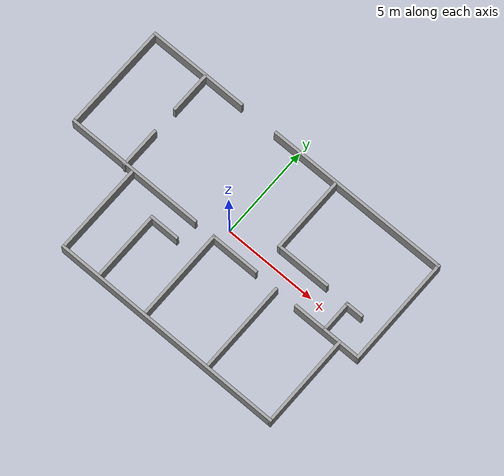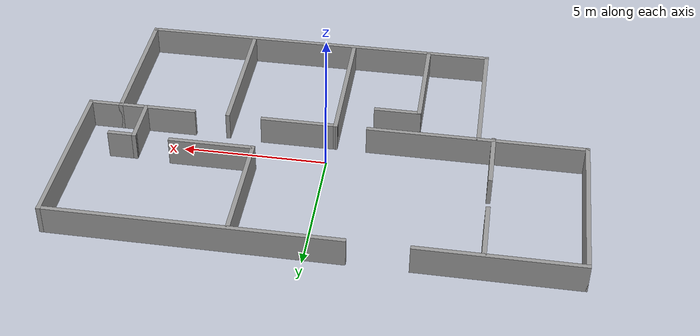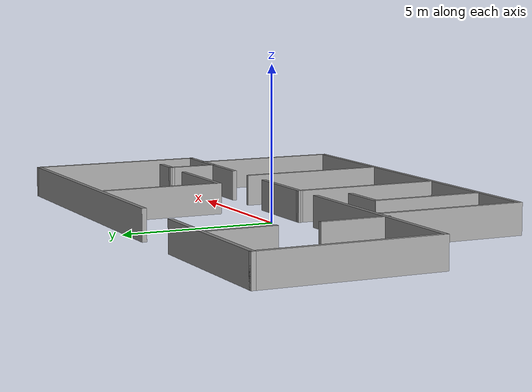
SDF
<?xml version='1.0'?>
<sdf version='1.6'>
  <model name='home'>
    <pose frame=''>-0.127498 -0.471945 0 0 -0 0</pose>
    <link name='Wall_0'>
      <collision name='Wall_0_Collision'>
        <geometry>
          <box>
            <size>5.85 0.15 1.01</size>
          </box>
        </geometry>
        <pose frame=''>0 0 0.505 0 -0 0</pose>
      </collision>
      <visual name='Wall_0_Visual'>
        <pose frame=''>0 0 0.505 0 -0 0</pose>
        <geometry>
          <box>
            <size>5.85 0.15 1.01</size>
          </box>
        </geometry>
        <material>
          <script>
            <uri>file://media/materials/scripts/gazebo.material</uri>
            <name>Gazebo/Grey</name>
          </script>
          <ambient>1 1 1 1</ambient>
        </material>
      </visual>
      <pose frame=''>-8.6775 2.44195 0 0 0 -1.5708</pose>
    </link>
    <link name='Wall_10'>
      <collision name='Wall_10_Collision'>
        <geometry>
          <box>
            <size>3.75 0.15 1.01</size>
          </box>
        </geometry>
        <pose frame=''>0 0 0.505 0 -0 0</pose>
      </collision>
      <visual name='Wall_10_Visual'>
        <pose frame=''>0 0 0.505 0 -0 0</pose>
        <geometry>
          <box>
            <size>3.75 0.15 1.01</size>
          </box>
        </geometry>
        <material>
          <script>
            <uri>file://media/materials/scripts/gazebo.material</uri>
            <name>Gazebo/Grey</name>
          </script>
          <ambient>1 1 1 1</ambient>
        </material>
      </visual>
      <pose frame=''>-2.85846 -3.39925 0 0 -0 1.5708</pose>
    </link>
    <link name='Wall_11'>
      <collision name='Wall_11_Collision'>
        <geometry>
          <box>
            <size>1.65 0.15 1.01</size>
          </box>
        </geometry>
        <pose frame=''>0 0 0.505 0 -0 0</pose>
      </collision>
      <visual name='Wall_11_Visual'>
        <pose frame=''>0 0 0.505 0 -0 0</pose>
        <geometry>
          <box>
            <size>1.65 0.15 1.01</size>
          </box>
        </geometry>
        <material>
          <script>
            <uri>file://media/materials/scripts/gazebo.material</uri>
            <name>Gazebo/Grey</name>
          </script>
          <ambient>1 1 1 1</ambient>
        </material>
      </visual>
      <pose frame=''>-2.10 -1.57 0 0 -0 0</pose>
    </link>
    <link name='Wall_12'>
      <collision name='Wall_12_Collision'>
        <geometry>
          <box>
            <size>4.88874 0.15 1.01</size>
          </box>
        </geometry>
        <pose frame=''>0 0 0.505 0 -0 0</pose>
      </collision>
      <visual name='Wall_12_Visual'>
        <pose frame=''>0 0 0.505 0 -0 0</pose>
        <geometry>
          <box>
            <size>4.88874 0.15 1.01</size>
          </box>
        </geometry>
        <material>
          <script>
            <uri>file://media/materials/scripts/gazebo.material</uri>
            <name>Gazebo/Grey</name>
          </script>
          <ambient>1 1 1 1</ambient>
        </material>
      </visual>
      <pose frame=''>-0.066276 -2.77742 0 0 -0 1.57342</pose>
    </link>
    <link name='Wall_16'>
      <collision name='Wall_16_Collision'>
        <geometry>
          <box>
            <size>4.9 0.15 1.01</size>
          </box>
        </geometry>
        <pose frame=''>0 0 0.505 0 -0 0</pose>
      </collision>
      <visual name='Wall_16_Visual'>
        <pose frame=''>0 0 0.505 0 -0 0</pose>
        <geometry>
          <box>
            <size>4.9 0.15 1.01</size>
          </box>
        </geometry>
        <material>
          <script>
            <uri>file://media/materials/scripts/gazebo.material</uri>
            <name>Gazebo/Grey</name>
          </script>
          <ambient>1 1 1 1</ambient>
        </material>
      </visual>
      <pose frame=''>3.73529 -2.82425 0 0 -0 1.5708</pose>
    </link>
    <link name='Wall_18'>
      <collision name='Wall_18_Collision'>
        <geometry>
          <box>
            <size>3.85 0.15 1.01</size>
          </box>
        </geometry>
        <pose frame=''>0 0 0.505 0 -0 0</pose>
      </collision>
      <visual name='Wall_18_Visual'>
        <pose frame=''>0 0 0.505 0 -0 0</pose>
        <geometry>
          <box>
            <size>3.85 0.15 1.01</size>
          </box>
        </geometry>
        <material>
          <script>
            <uri>file://media/materials/scripts/gazebo.material</uri>
            <name>Gazebo/Grey</name>
          </script>
          <ambient>1 1 1 1</ambient>
        </material>
      </visual>
      <pose frame=''>6.82709 -0.44195 0 0 -0 0</pose>
    </link>
    <link name='Wall_2'>
      <collision name='Wall_2_Collision'>
        <geometry>
          <box>
            <size>7.6 0.15 1.01</size>
          </box>
        </geometry>
        <pose frame=''>0 0 0.505 0 -0 0</pose>
      </collision>
      <visual name='Wall_2_Visual'>
        <pose frame=''>0 0 0.505 0 -0 0</pose>
        <geometry>
          <box>
            <size>7.6 0.15 1.01</size>
          </box>
        </geometry>
        <material>
          <script>
            <uri>file://media/materials/scripts/gazebo.material</uri>
            <name>Gazebo/Grey</name>
          </script>
          <ambient>1 1 1 1</ambient>
        </material>
      </visual>
      <pose frame=''>-4.9525 -0.408055 0 0 -0 0</pose>
    </link>
    <link name='Wall_20'>
      <collision name='Wall_20_Collision'>
        <geometry>
          <box>
            <size>5.8839 0.15 1.01</size>
          </box>
        </geometry>
        <pose frame=''>0 0 0.505 0 -0 0</pose>
      </collision>
      <visual name='Wall_20_Visual'>
        <pose frame=''>0 0 0.505 0 -0 0</pose>
        <geometry>
          <box>
            <size>5.8839 0.15 1.01</size>
          </box>
        </geometry>
        <material>
          <script>
            <uri>file://media/materials/scripts/gazebo.material</uri>
            <name>Gazebo/Grey</name>
          </script>
          <ambient>1 1 1 1</ambient>
        </material>
      </visual>
      <pose frame=''>8.67729 2.425 0 0 -0 1.57072</pose>
    </link>
    <link name='Wall_22'>
      <collision name='Wall_22_Collision'>
        <geometry>
          <box>
            <size>10 0.15 1.01</size>
          </box>
        </geometry>
        <pose frame=''>0 0 0.505 0 -0 0</pose>
      </collision>
      <visual name='Wall_22_Visual'>
        <pose frame=''>0 0 0.505 0 -0 0</pose>
        <geometry>
          <box>
            <size>10 0.15 1.01</size>
          </box>
        </geometry>
        <material>
          <script>
            <uri>file://media/materials/scripts/gazebo.material</uri>
            <name>Gazebo/Grey</name>
          </script>
          <ambient>1 1 1 1</ambient>
        </material>
      </visual>
      <pose frame=''>3.7525 5.29195 0 0 -0 3.14159</pose>
    </link>
    <link name='Wall_24'>
      <collision name='Wall_24_Collision'>
        <geometry>
          <box>
            <size>5.5 0.15 1.01</size>
          </box>
        </geometry>
        <pose frame=''>0 0 0.505 0 -0 0</pose>
      </collision>
      <visual name='Wall_24_Visual'>
        <pose frame=''>0 0 0.505 0 -0 0</pose>
        <geometry>
          <box>
            <size>5.5 0.15 1.01</size>
          </box>
        </geometry>
        <material>
          <script>
            <uri>file://media/materials/scripts/gazebo.material</uri>
            <name>Gazebo/Grey</name>
          </script>
          <ambient>1 1 1 1</ambient>
        </material>
      </visual>
      <pose frame=''>-6.0025 5.29195 0 0 -0 0</pose>
    </link>
    <link name='Wall_26'>
      <collision name='Wall_26_Collision'>
        <geometry>
          <box>
            <size>1.75 0.15 1.01</size>
          </box>
        </geometry>
        <pose frame=''>0 0 0.505 0 -0 0</pose>
      </collision>
      <visual name='Wall_26_Visual'>
        <pose frame=''>0 0 0.505 0 -0 0</pose>
        <geometry>
          <box>
            <size>1.75 0.15 1.01</size>
          </box>
        </geometry>
        <material>
          <script>
            <uri>file://media/materials/scripts/gazebo.material</uri>
            <name>Gazebo/Grey</name>
          </script>
          <ambient>1 1 1 1</ambient>
        </material>
      </visual>
      <pose frame=''>6.67166 0.362175 0 0 0 -1.5706</pose>
    </link>
    <link name='Wall_28'>
      <collision name='Wall_28_Collision'>
        <geometry>
          <box>
            <size>1 0.15 1.01</size>
          </box>
        </geometry>
        <pose frame=''>0 0 0.505 0 -0 0</pose>
      </collision>
      <visual name='Wall_28_Visual'>
        <pose frame=''>0 0 0.505 0 -0 0</pose>
        <geometry>
          <box>
            <size>1 0.15 1.01</size>
          </box>
        </geometry>
        <material>
          <script>
            <uri>file://media/materials/scripts/gazebo.material</uri>
            <name>Gazebo/Grey</name>
          </script>
          <ambient>1 1 1 1</ambient>
        </material>
      </visual>
      <pose frame=''>7.0965 1.16195 0 0 -0 0</pose>
    </link>
    <link name='Wall_30'>
      <collision name='Wall_30_Collision'>
        <geometry>
          <box>
            <size>4.1 0.15 1.01</size>
          </box>
        </geometry>
        <pose frame=''>0 0 0.505 0 -0 0</pose>
      </collision>
      <visual name='Wall_30_Visual'>
        <pose frame=''>0 0 0.505 0 -0 0</pose>
        <geometry>
          <box>
            <size>4.1 0.15 1.01</size>
          </box>
        </geometry>
        <material>
          <script>
            <uri>file://media/materials/scripts/gazebo.material</uri>
            <name>Gazebo/Grey</name>
          </script>
          <ambient>1 1 1 1</ambient>
        </material>
      </visual>
      <pose frame=''>2.52218 3.20403 0 0 0 -1.5708</pose>
    </link>
    <link name='Wall_32'>
      <collision name='Wall_32_Collision'>
        <geometry>
          <box>
            <size>3 0.15 1.01</size>
          </box>
        </geometry>
        <pose frame=''>0 0 0.505 0 -0 0</pose>
      </collision>
      <visual name='Wall_32_Visual'>
        <pose frame=''>0 0 0.505 0 -0 0</pose>
        <geometry>
          <box>
            <size>3 0.15 1.01</size>
          </box>
        </geometry>
        <material>
          <script>
            <uri>file://media/materials/scripts/gazebo.material</uri>
            <name>Gazebo/Grey</name>
          </script>
          <ambient>1 1 1 1</ambient>
        </material>
      </visual>
      <pose frame=''>3.94719 1.22903 0 0 -0 0</pose>
    </link>
    <link name='Wall_34'>
      <collision name='Wall_34_Collision'>
        <geometry>
          <box>
            <size>2.25 0.15 1.01</size>
          </box>
        </geometry>
        <pose frame=''>0 0 0.505 0 -0 0</pose>
      </collision>
      <visual name='Wall_34_Visual'>
        <pose frame=''>0 0 0.505 0 -0 0</pose>
        <geometry>
          <box>
            <size>2.25 0.15 1.01</size>
          </box>
        </geometry>
        <material>
          <script>
            <uri>file://media/materials/scripts/gazebo.material</uri>
            <name>Gazebo/Grey</name>
          </script>
          <ambient>1 1 1 1</ambient>
        </material>
      </visual>
      <pose frame=''>-5.5115 4.15595 0 0 0 -1.5708</pose>
    </link>
    <link name='Wall_36'>
      <collision name='Wall_36_Collision'>
        <geometry>
          <box>
            <size>2.25 0.15 1.01</size>
          </box>
        </geometry>
        <pose frame=''>0 0 0.505 0 -0 0</pose>
      </collision>
      <visual name='Wall_36_Visual'>
        <pose frame=''>0 0 0.505 0 -0 0</pose>
        <geometry>
          <box>
            <size>2.25 0.15 1.01</size>
          </box>
        </geometry>
        <material>
          <script>
            <uri>file://media/materials/scripts/gazebo.material</uri>
            <name>Gazebo/Grey</name>
          </script>
          <ambient>1 1 1 1</ambient>
        </material>
      </visual>
      <pose frame=''>-5.51107 0.589792 0 0 -0 1.5708</pose>
    </link>
    <link name='Wall_4'>
      <collision name='Wall_4_Collision'>
        <geometry>
          <box>
            <size>2.7 0.15 1.01</size>
          </box>
        </geometry>
        <pose frame=''>0 0 0.505 0 -0 0</pose>
      </collision>
      <visual name='Wall_4_Visual'>
        <pose frame=''>0 0 0.505 0 -0 0</pose>
        <geometry>
          <box>
            <size>2.7 0.15 1.01</size>
          </box>
        </geometry>
        <material>
          <script>
            <uri>file://media/materials/scripts/gazebo.material</uri>
            <name>Gazebo/Grey</name>
          </script>
          <ambient>1 1 1 1</ambient>
        </material>
      </visual>
      <pose frame=''>1.2025 -0.408055 0 0 -0 0</pose>
    </link>
    <link name='Wall_6'>
      <collision name='Wall_6_Collision'>
        <geometry>
          <box>
            <size>5 0.15 1.01</size>
          </box>
        </geometry>
        <pose frame=''>0 0 0.505 0 -0 0</pose>
      </collision>
      <visual name='Wall_6_Visual'>
        <pose frame=''>0 0 0.505 0 -0 0</pose>
        <geometry>
          <box>
            <size>5 0.15 1.01</size>
          </box>
        </geometry>
        <material>
          <script>
            <uri>file://media/materials/scripts/gazebo.material</uri>
            <name>Gazebo/Grey</name>
          </script>
          <ambient>1 1 1 1</ambient>
        </material>
      </visual>
      <pose frame=''>-5 -2.86695 0 0 0 -1.5708</pose>
    </link>
    <link name='Wall_7'>
      <collision name='Wall_7_Collision'>
        <geometry>
          <box>
            <size>12.73 0.15 1.01</size>
          </box>
        </geometry>
        <pose frame=''>0 0 0.505 0 -0 0</pose>
      </collision>
      <visual name='Wall_7_Visual'>
        <pose frame=''>0 0 0.505 0 -0 0</pose>
        <geometry>
          <box>
            <size>12.73 0.15 1.01</size>
          </box>
        </geometry>
        <material>
          <script>
            <uri>file://media/materials/scripts/gazebo.material</uri>
            <name>Gazebo/Grey</name>
          </script>
          <ambient>1 1 1 1</ambient>
        </material>
      </visual>
      <pose frame=''>1.29 -5.29195 0 0 -0 0</pose>
    </link>
    <link name='Wall_8'>
      <collision name='Wall_8_Collision'>
        <geometry>
          <box>
            <size>5 0.15 1.01</size>
          </box>
        </geometry>
        <pose frame=''>0 0 0.505 0 -0 0</pose>
      </collision>
      <visual name='Wall_8_Visual'>
        <pose frame=''>0 0 0.505 0 -0 0</pose>
        <geometry>
          <box>
            <size>5 0.15 1.01</size>
          </box>
        </geometry>
        <material>
          <script>
            <uri>file://media/materials/scripts/gazebo.material</uri>
            <name>Gazebo/Grey</name>
          </script>
          <ambient>1 1 1 1</ambient>
        </material>
      </visual>
      <pose frame=''>7.58098 -2.86695 0 0 -0 1.5708</pose>
    </link>
    <static>1</static>
  </model>
</sdf>
